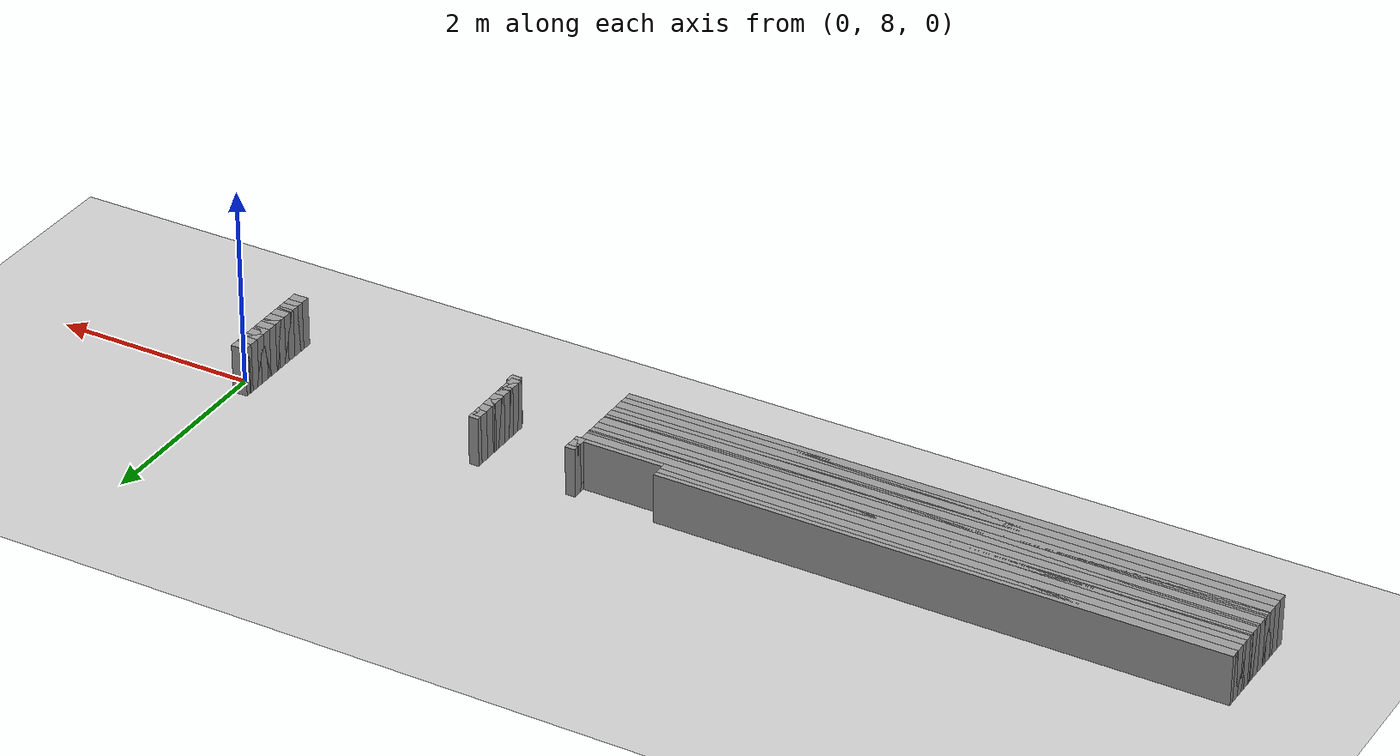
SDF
<sdf version="1.6">
 <world name="GridMap">
  <include><uri>model://sun</uri></include>
  <include><uri>model://ground_plane</uri></include>
  <model name="GridMap">
   <link name="Wall_(135.0,143.0)">
    <collision name="Wall_(135.0,143.0)_Collision">
     <geometry><box><size>6.4 0.1 0.5</size></box></geometry>
     <pose>-6.75 7.15 0.25 0 -0 0</pose>
    </collision>
    <inertial>
     <mass>0.5</mass>
     <pose>0 0.01 0 0 0 0</pose>
     <inertia><ixx>0.004</ixx><ixy>0.001</ixy><ixz>0</ixz><iyy>0.006</iyy><iyz>0</iyz><izz>0.007</izz></inertia>
    </inertial>
    <visual name="Wall_(135.0,143.0)_Visual">
     <geometry><box><size>6.4 0.1 0.5</size></box></geometry>
     <pose>-6.75 7.15 0.25 0 -0 0</pose>
     <material>
      <script><uri>file://media/materials/scripts/gazebo.material</uri><name>Gazebo/Grey</name></script>
      <ambient>1 1 1 1</ambient>
     </material>
     <meta><layer>0</layer></meta>
    </visual>
   </link>
   <link name="Wall_(1.5,144.0)">
    <collision name="Wall_(1.5,144.0)_Collision">
     <geometry><box><size>0.15000000000000002 0.1 0.5</size></box></geometry>
     <pose>-0.07500000000000001 7.2 0.25 0 -0 0</pose>
    </collision>
    <inertial>
     <mass>0.5</mass>
     <pose>0 0.01 0 0 0 0</pose>
     <inertia><ixx>0.004</ixx><ixy>0.001</ixy><ixz>0</ixz><iyy>0.006</iyy><iyz>0</iyz><izz>0.007</izz></inertia>
    </inertial>
    <visual name="Wall_(1.5,144.0)_Visual">
     <geometry><box><size>0.15000000000000002 0.1 0.5</size></box></geometry>
     <pose>-0.07500000000000001 7.2 0.25 0 -0 0</pose>
     <material>
      <script><uri>file://media/materials/scripts/gazebo.material</uri><name>Gazebo/Grey</name></script>
      <ambient>1 1 1 1</ambient>
     </material>
     <meta><layer>0</layer></meta>
    </visual>
   </link>
   <link name="Wall_(135.0,144.0)">
    <collision name="Wall_(135.0,144.0)_Collision">
     <geometry><box><size>6.4 0.1 0.5</size></box></geometry>
     <pose>-6.75 7.2 0.25 0 -0 0</pose>
    </collision>
    <inertial>
     <mass>0.5</mass>
     <pose>0 0.01 0 0 0 0</pose>
     <inertia><ixx>0.004</ixx><ixy>0.001</ixy><ixz>0</ixz><iyy>0.006</iyy><iyz>0</iyz><izz>0.007</izz></inertia>
    </inertial>
    <visual name="Wall_(135.0,144.0)_Visual">
     <geometry><box><size>6.4 0.1 0.5</size></box></geometry>
     <pose>-6.75 7.2 0.25 0 -0 0</pose>
     <material>
      <script><uri>file://media/materials/scripts/gazebo.material</uri><name>Gazebo/Grey</name></script>
      <ambient>1 1 1 1</ambient>
     </material>
     <meta><layer>0</layer></meta>
    </visual>
   </link>
   <link name="Wall_(1.5,145.0)">
    <collision name="Wall_(1.5,145.0)_Collision">
     <geometry><box><size>0.15000000000000002 0.1 0.5</size></box></geometry>
     <pose>-0.07500000000000001 7.25 0.25 0 -0 0</pose>
    </collision>
    <inertial>
     <mass>0.5</mass>
     <pose>0 0.01 0 0 0 0</pose>
     <inertia><ixx>0.004</ixx><ixy>0.001</ixy><ixz>0</ixz><iyy>0.006</iyy><iyz>0</iyz><izz>0.007</izz></inertia>
    </inertial>
    <visual name="Wall_(1.5,145.0)_Visual">
     <geometry><box><size>0.15000000000000002 0.1 0.5</size></box></geometry>
     <pose>-0.07500000000000001 7.25 0.25 0 -0 0</pose>
     <material>
      <script><uri>file://media/materials/scripts/gazebo.material</uri><name>Gazebo/Grey</name></script>
      <ambient>1 1 1 1</ambient>
     </material>
     <meta><layer>0</layer></meta>
    </visual>
   </link>
   <link name="Wall_(135.0,145.0)">
    <collision name="Wall_(135.0,145.0)_Collision">
     <geometry><box><size>6.4 0.1 0.5</size></box></geometry>
     <pose>-6.75 7.25 0.25 0 -0 0</pose>
    </collision>
    <inertial>
     <mass>0.5</mass>
     <pose>0 0.01 0 0 0 0</pose>
     <inertia><ixx>0.004</ixx><ixy>0.001</ixy><ixz>0</ixz><iyy>0.006</iyy><iyz>0</iyz><izz>0.007</izz></inertia>
    </inertial>
    <visual name="Wall_(135.0,145.0)_Visual">
     <geometry><box><size>6.4 0.1 0.5</size></box></geometry>
     <pose>-6.75 7.25 0.25 0 -0 0</pose>
     <material>
      <script><uri>file://media/materials/scripts/gazebo.material</uri><name>Gazebo/Grey</name></script>
      <ambient>1 1 1 1</ambient>
     </material>
     <meta><layer>0</layer></meta>
    </visual>
   </link>
   <link name="Wall_(1.5,146.0)">
    <collision name="Wall_(1.5,146.0)_Collision">
     <geometry><box><size>0.15000000000000002 0.1 0.5</size></box></geometry>
     <pose>-0.07500000000000001 7.300000000000001 0.25 0 -0 0</pose>
    </collision>
    <inertial>
     <mass>0.5</mass>
     <pose>0 0.01 0 0 0 0</pose>
     <inertia><ixx>0.004</ixx><ixy>0.001</ixy><ixz>0</ixz><iyy>0.006</iyy><iyz>0</iyz><izz>0.007</izz></inertia>
    </inertial>
    <visual name="Wall_(1.5,146.0)_Visual">
     <geometry><box><size>0.15000000000000002 0.1 0.5</size></box></geometry>
     <pose>-0.07500000000000001 7.300000000000001 0.25 0 -0 0</pose>
     <material>
      <script><uri>file://media/materials/scripts/gazebo.material</uri><name>Gazebo/Grey</name></script>
      <ambient>1 1 1 1</ambient>
     </material>
     <meta><layer>0</layer></meta>
    </visual>
   </link>
   <link name="Wall_(135.0,146.0)">
    <collision name="Wall_(135.0,146.0)_Collision">
     <geometry><box><size>6.4 0.1 0.5</size></box></geometry>
     <pose>-6.75 7.300000000000001 0.25 0 -0 0</pose>
    </collision>
    <inertial>
     <mass>0.5</mass>
     <pose>0 0.01 0 0 0 0</pose>
     <inertia><ixx>0.004</ixx><ixy>0.001</ixy><ixz>0</ixz><iyy>0.006</iyy><iyz>0</iyz><izz>0.007</izz></inertia>
    </inertial>
    <visual name="Wall_(135.0,146.0)_Visual">
     <geometry><box><size>6.4 0.1 0.5</size></box></geometry>
     <pose>-6.75 7.300000000000001 0.25 0 -0 0</pose>
     <material>
      <script><uri>file://media/materials/scripts/gazebo.material</uri><name>Gazebo/Grey</name></script>
      <ambient>1 1 1 1</ambient>
     </material>
     <meta><layer>0</layer></meta>
    </visual>
   </link>
   <link name="Wall_(1.5,147.0)">
    <collision name="Wall_(1.5,147.0)_Collision">
     <geometry><box><size>0.15000000000000002 0.1 0.5</size></box></geometry>
     <pose>-0.07500000000000001 7.3500000000000005 0.25 0 -0 0</pose>
    </collision>
    <inertial>
     <mass>0.5</mass>
     <pose>0 0.01 0 0 0 0</pose>
     <inertia><ixx>0.004</ixx><ixy>0.001</ixy><ixz>0</ixz><iyy>0.006</iyy><iyz>0</iyz><izz>0.007</izz></inertia>
    </inertial>
    <visual name="Wall_(1.5,147.0)_Visual">
     <geometry><box><size>0.15000000000000002 0.1 0.5</size></box></geometry>
     <pose>-0.07500000000000001 7.3500000000000005 0.25 0 -0 0</pose>
     <material>
      <script><uri>file://media/materials/scripts/gazebo.material</uri><name>Gazebo/Grey</name></script>
      <ambient>1 1 1 1</ambient>
     </material>
     <meta><layer>0</layer></meta>
    </visual>
   </link>
   <link name="Wall_(135.0,147.0)">
    <collision name="Wall_(135.0,147.0)_Collision">
     <geometry><box><size>6.4 0.1 0.5</size></box></geometry>
     <pose>-6.75 7.3500000000000005 0.25 0 -0 0</pose>
    </collision>
    <inertial>
     <mass>0.5</mass>
     <pose>0 0.01 0 0 0 0</pose>
     <inertia><ixx>0.004</ixx><ixy>0.001</ixy><ixz>0</ixz><iyy>0.006</iyy><iyz>0</iyz><izz>0.007</izz></inertia>
    </inertial>
    <visual name="Wall_(135.0,147.0)_Visual">
     <geometry><box><size>6.4 0.1 0.5</size></box></geometry>
     <pose>-6.75 7.3500000000000005 0.25 0 -0 0</pose>
     <material>
      <script><uri>file://media/materials/scripts/gazebo.material</uri><name>Gazebo/Grey</name></script>
      <ambient>1 1 1 1</ambient>
     </material>
     <meta><layer>0</layer></meta>
    </visual>
   </link>
   <link name="Wall_(1.5,148.0)">
    <collision name="Wall_(1.5,148.0)_Collision">
     <geometry><box><size>0.15000000000000002 0.1 0.5</size></box></geometry>
     <pose>-0.07500000000000001 7.4 0.25 0 -0 0</pose>
    </collision>
    <inertial>
     <mass>0.5</mass>
     <pose>0 0.01 0 0 0 0</pose>
     <inertia><ixx>0.004</ixx><ixy>0.001</ixy><ixz>0</ixz><iyy>0.006</iyy><iyz>0</iyz><izz>0.007</izz></inertia>
    </inertial>
    <visual name="Wall_(1.5,148.0)_Visual">
     <geometry><box><size>0.15000000000000002 0.1 0.5</size></box></geometry>
     <pose>-0.07500000000000001 7.4 0.25 0 -0 0</pose>
     <material>
      <script><uri>file://media/materials/scripts/gazebo.material</uri><name>Gazebo/Grey</name></script>
      <ambient>1 1 1 1</ambient>
     </material>
     <meta><layer>0</layer></meta>
    </visual>
   </link>
   <link name="Wall_(50.5,148.0)">
    <collision name="Wall_(50.5,148.0)_Collision">
     <geometry><box><size>0.1 0.1 0.5</size></box></geometry>
     <pose>-2.5250000000000004 7.4 0.25 0 -0 0</pose>
    </collision>
    <inertial>
     <mass>0.5</mass>
     <pose>0 0.01 0 0 0 0</pose>
     <inertia><ixx>0.004</ixx><ixy>0.001</ixy><ixz>0</ixz><iyy>0.006</iyy><iyz>0</iyz><izz>0.007</izz></inertia>
    </inertial>
    <visual name="Wall_(50.5,148.0)_Visual">
     <geometry><box><size>0.1 0.1 0.5</size></box></geometry>
     <pose>-2.5250000000000004 7.4 0.25 0 -0 0</pose>
     <material>
      <script><uri>file://media/materials/scripts/gazebo.material</uri><name>Gazebo/Grey</name></script>
      <ambient>1 1 1 1</ambient>
     </material>
     <meta><layer>0</layer></meta>
    </visual>
   </link>
   <link name="Wall_(135.0,148.0)">
    <collision name="Wall_(135.0,148.0)_Collision">
     <geometry><box><size>6.4 0.1 0.5</size></box></geometry>
     <pose>-6.75 7.4 0.25 0 -0 0</pose>
    </collision>
    <inertial>
     <mass>0.5</mass>
     <pose>0 0.01 0 0 0 0</pose>
     <inertia><ixx>0.004</ixx><ixy>0.001</ixy><ixz>0</ixz><iyy>0.006</iyy><iyz>0</iyz><izz>0.007</izz></inertia>
    </inertial>
    <visual name="Wall_(135.0,148.0)_Visual">
     <geometry><box><size>6.4 0.1 0.5</size></box></geometry>
     <pose>-6.75 7.4 0.25 0 -0 0</pose>
     <material>
      <script><uri>file://media/materials/scripts/gazebo.material</uri><name>Gazebo/Grey</name></script>
      <ambient>1 1 1 1</ambient>
     </material>
     <meta><layer>0</layer></meta>
    </visual>
   </link>
   <link name="Wall_(1.5,149.0)">
    <collision name="Wall_(1.5,149.0)_Collision">
     <geometry><box><size>0.15000000000000002 0.1 0.5</size></box></geometry>
     <pose>-0.07500000000000001 7.45 0.25 0 -0 0</pose>
    </collision>
    <inertial>
     <mass>0.5</mass>
     <pose>0 0.01 0 0 0 0</pose>
     <inertia><ixx>0.004</ixx><ixy>0.001</ixy><ixz>0</ixz><iyy>0.006</iyy><iyz>0</iyz><izz>0.007</izz></inertia>
    </inertial>
    <visual name="Wall_(1.5,149.0)_Visual">
     <geometry><box><size>0.15000000000000002 0.1 0.5</size></box></geometry>
     <pose>-0.07500000000000001 7.45 0.25 0 -0 0</pose>
     <material>
      <script><uri>file://media/materials/scripts/gazebo.material</uri><name>Gazebo/Grey</name></script>
      <ambient>1 1 1 1</ambient>
     </material>
     <meta><layer>0</layer></meta>
    </visual>
   </link>
   <link name="Wall_(51.0,149.0)">
    <collision name="Wall_(51.0,149.0)_Collision">
     <geometry><box><size>0.1 0.1 0.5</size></box></geometry>
     <pose>-2.5500000000000003 7.45 0.25 0 -0 0</pose>
    </collision>
    <inertial>
     <mass>0.5</mass>
     <pose>0 0.01 0 0 0 0</pose>
     <inertia><ixx>0.004</ixx><ixy>0.001</ixy><ixz>0</ixz><iyy>0.006</iyy><iyz>0</iyz><izz>0.007</izz></inertia>
    </inertial>
    <visual name="Wall_(51.0,149.0)_Visual">
     <geometry><box><size>0.1 0.1 0.5</size></box></geometry>
     <pose>-2.5500000000000003 7.45 0.25 0 -0 0</pose>
     <material>
      <script><uri>file://media/materials/scripts/gazebo.material</uri><name>Gazebo/Grey</name></script>
      <ambient>1 1 1 1</ambient>
     </material>
     <meta><layer>0</layer></meta>
    </visual>
   </link>
   <link name="Wall_(135.0,149.0)">
    <collision name="Wall_(135.0,149.0)_Collision">
     <geometry><box><size>6.4 0.1 0.5</size></box></geometry>
     <pose>-6.75 7.45 0.25 0 -0 0</pose>
    </collision>
    <inertial>
     <mass>0.5</mass>
     <pose>0 0.01 0 0 0 0</pose>
     <inertia><ixx>0.004</ixx><ixy>0.001</ixy><ixz>0</ixz><iyy>0.006</iyy><iyz>0</iyz><izz>0.007</izz></inertia>
    </inertial>
    <visual name="Wall_(135.0,149.0)_Visual">
     <geometry><box><size>6.4 0.1 0.5</size></box></geometry>
     <pose>-6.75 7.45 0.25 0 -0 0</pose>
     <material>
      <script><uri>file://media/materials/scripts/gazebo.material</uri><name>Gazebo/Grey</name></script>
      <ambient>1 1 1 1</ambient>
     </material>
     <meta><layer>0</layer></meta>
    </visual>
   </link>
   <link name="Wall_(1.5,150.0)">
    <collision name="Wall_(1.5,150.0)_Collision">
     <geometry><box><size>0.15000000000000002 0.1 0.5</size></box></geometry>
     <pose>-0.07500000000000001 7.5 0.25 0 -0 0</pose>
    </collision>
    <inertial>
     <mass>0.5</mass>
     <pose>0 0.01 0 0 0 0</pose>
     <inertia><ixx>0.004</ixx><ixy>0.001</ixy><ixz>0</ixz><iyy>0.006</iyy><iyz>0</iyz><izz>0.007</izz></inertia>
    </inertial>
    <visual name="Wall_(1.5,150.0)_Visual">
     <geometry><box><size>0.15000000000000002 0.1 0.5</size></box></geometry>
     <pose>-0.07500000000000001 7.5 0.25 0 -0 0</pose>
     <material>
      <script><uri>file://media/materials/scripts/gazebo.material</uri><name>Gazebo/Grey</name></script>
      <ambient>1 1 1 1</ambient>
     </material>
     <meta><layer>0</layer></meta>
    </visual>
   </link>
   <link name="Wall_(51.0,150.0)">
    <collision name="Wall_(51.0,150.0)_Collision">
     <geometry><box><size>0.1 0.1 0.5</size></box></geometry>
     <pose>-2.5500000000000003 7.5 0.25 0 -0 0</pose>
    </collision>
    <inertial>
     <mass>0.5</mass>
     <pose>0 0.01 0 0 0 0</pose>
     <inertia><ixx>0.004</ixx><ixy>0.001</ixy><ixz>0</ixz><iyy>0.006</iyy><iyz>0</iyz><izz>0.007</izz></inertia>
    </inertial>
    <visual name="Wall_(51.0,150.0)_Visual">
     <geometry><box><size>0.1 0.1 0.5</size></box></geometry>
     <pose>-2.5500000000000003 7.5 0.25 0 -0 0</pose>
     <material>
      <script><uri>file://media/materials/scripts/gazebo.material</uri><name>Gazebo/Grey</name></script>
      <ambient>1 1 1 1</ambient>
     </material>
     <meta><layer>0</layer></meta>
    </visual>
   </link>
   <link name="Wall_(135.0,150.0)">
    <collision name="Wall_(135.0,150.0)_Collision">
     <geometry><box><size>6.4 0.1 0.5</size></box></geometry>
     <pose>-6.75 7.5 0.25 0 -0 0</pose>
    </collision>
    <inertial>
     <mass>0.5</mass>
     <pose>0 0.01 0 0 0 0</pose>
     <inertia><ixx>0.004</ixx><ixy>0.001</ixy><ixz>0</ixz><iyy>0.006</iyy><iyz>0</iyz><izz>0.007</izz></inertia>
    </inertial>
    <visual name="Wall_(135.0,150.0)_Visual">
     <geometry><box><size>6.4 0.1 0.5</size></box></geometry>
     <pose>-6.75 7.5 0.25 0 -0 0</pose>
     <material>
      <script><uri>file://media/materials/scripts/gazebo.material</uri><name>Gazebo/Grey</name></script>
      <ambient>1 1 1 1</ambient>
     </material>
     <meta><layer>0</layer></meta>
    </visual>
   </link>
   <link name="Wall_(1.5,151.0)">
    <collision name="Wall_(1.5,151.0)_Collision">
     <geometry><box><size>0.15000000000000002 0.1 0.5</size></box></geometry>
     <pose>-0.07500000000000001 7.550000000000001 0.25 0 -0 0</pose>
    </collision>
    <inertial>
     <mass>0.5</mass>
     <pose>0 0.01 0 0 0 0</pose>
     <inertia><ixx>0.004</ixx><ixy>0.001</ixy><ixz>0</ixz><iyy>0.006</iyy><iyz>0</iyz><izz>0.007</izz></inertia>
    </inertial>
    <visual name="Wall_(1.5,151.0)_Visual">
     <geometry><box><size>0.15000000000000002 0.1 0.5</size></box></geometry>
     <pose>-0.07500000000000001 7.550000000000001 0.25 0 -0 0</pose>
     <material>
      <script><uri>file://media/materials/scripts/gazebo.material</uri><name>Gazebo/Grey</name></script>
      <ambient>1 1 1 1</ambient>
     </material>
     <meta><layer>0</layer></meta>
    </visual>
   </link>
   <link name="Wall_(51.0,151.0)">
    <collision name="Wall_(51.0,151.0)_Collision">
     <geometry><box><size>0.1 0.1 0.5</size></box></geometry>
     <pose>-2.5500000000000003 7.550000000000001 0.25 0 -0 0</pose>
    </collision>
    <inertial>
     <mass>0.5</mass>
     <pose>0 0.01 0 0 0 0</pose>
     <inertia><ixx>0.004</ixx><ixy>0.001</ixy><ixz>0</ixz><iyy>0.006</iyy><iyz>0</iyz><izz>0.007</izz></inertia>
    </inertial>
    <visual name="Wall_(51.0,151.0)_Visual">
     <geometry><box><size>0.1 0.1 0.5</size></box></geometry>
     <pose>-2.5500000000000003 7.550000000000001 0.25 0 -0 0</pose>
     <material>
      <script><uri>file://media/materials/scripts/gazebo.material</uri><name>Gazebo/Grey</name></script>
      <ambient>1 1 1 1</ambient>
     </material>
     <meta><layer>0</layer></meta>
    </visual>
   </link>
   <link name="Wall_(135.0,151.0)">
    <collision name="Wall_(135.0,151.0)_Collision">
     <geometry><box><size>6.4 0.1 0.5</size></box></geometry>
     <pose>-6.75 7.550000000000001 0.25 0 -0 0</pose>
    </collision>
    <inertial>
     <mass>0.5</mass>
     <pose>0 0.01 0 0 0 0</pose>
     <inertia><ixx>0.004</ixx><ixy>0.001</ixy><ixz>0</ixz><iyy>0.006</iyy><iyz>0</iyz><izz>0.007</izz></inertia>
    </inertial>
    <visual name="Wall_(135.0,151.0)_Visual">
     <geometry><box><size>6.4 0.1 0.5</size></box></geometry>
     <pose>-6.75 7.550000000000001 0.25 0 -0 0</pose>
     <material>
      <script><uri>file://media/materials/scripts/gazebo.material</uri><name>Gazebo/Grey</name></script>
      <ambient>1 1 1 1</ambient>
     </material>
     <meta><layer>0</layer></meta>
    </visual>
   </link>
   <link name="Wall_(1.5,152.0)">
    <collision name="Wall_(1.5,152.0)_Collision">
     <geometry><box><size>0.15000000000000002 0.1 0.5</size></box></geometry>
     <pose>-0.07500000000000001 7.6000000000000005 0.25 0 -0 0</pose>
    </collision>
    <inertial>
     <mass>0.5</mass>
     <pose>0 0.01 0 0 0 0</pose>
     <inertia><ixx>0.004</ixx><ixy>0.001</ixy><ixz>0</ixz><iyy>0.006</iyy><iyz>0</iyz><izz>0.007</izz></inertia>
    </inertial>
    <visual name="Wall_(1.5,152.0)_Visual">
     <geometry><box><size>0.15000000000000002 0.1 0.5</size></box></geometry>
     <pose>-0.07500000000000001 7.6000000000000005 0.25 0 -0 0</pose>
     <material>
      <script><uri>file://media/materials/scripts/gazebo.material</uri><name>Gazebo/Grey</name></script>
      <ambient>1 1 1 1</ambient>
     </material>
     <meta><layer>0</layer></meta>
    </visual>
   </link>
   <link name="Wall_(51.0,152.0)">
    <collision name="Wall_(51.0,152.0)_Collision">
     <geometry><box><size>0.1 0.1 0.5</size></box></geometry>
     <pose>-2.5500000000000003 7.6000000000000005 0.25 0 -0 0</pose>
    </collision>
    <inertial>
     <mass>0.5</mass>
     <pose>0 0.01 0 0 0 0</pose>
     <inertia><ixx>0.004</ixx><ixy>0.001</ixy><ixz>0</ixz><iyy>0.006</iyy><iyz>0</iyz><izz>0.007</izz></inertia>
    </inertial>
    <visual name="Wall_(51.0,152.0)_Visual">
     <geometry><box><size>0.1 0.1 0.5</size></box></geometry>
     <pose>-2.5500000000000003 7.6000000000000005 0.25 0 -0 0</pose>
     <material>
      <script><uri>file://media/materials/scripts/gazebo.material</uri><name>Gazebo/Grey</name></script>
      <ambient>1 1 1 1</ambient>
     </material>
     <meta><layer>0</layer></meta>
    </visual>
   </link>
   <link name="Wall_(135.0,152.0)">
    <collision name="Wall_(135.0,152.0)_Collision">
     <geometry><box><size>6.4 0.1 0.5</size></box></geometry>
     <pose>-6.75 7.6000000000000005 0.25 0 -0 0</pose>
    </collision>
    <inertial>
     <mass>0.5</mass>
     <pose>0 0.01 0 0 0 0</pose>
     <inertia><ixx>0.004</ixx><ixy>0.001</ixy><ixz>0</ixz><iyy>0.006</iyy><iyz>0</iyz><izz>0.007</izz></inertia>
    </inertial>
    <visual name="Wall_(135.0,152.0)_Visual">
     <geometry><box><size>6.4 0.1 0.5</size></box></geometry>
     <pose>-6.75 7.6000000000000005 0.25 0 -0 0</pose>
     <material>
      <script><uri>file://media/materials/scripts/gazebo.material</uri><name>Gazebo/Grey</name></script>
      <ambient>1 1 1 1</ambient>
     </material>
     <meta><layer>0</layer></meta>
    </visual>
   </link>
   <link name="Wall_(1.5,153.0)">
    <collision name="Wall_(1.5,153.0)_Collision">
     <geometry><box><size>0.15000000000000002 0.1 0.5</size></box></geometry>
     <pose>-0.07500000000000001 7.65 0.25 0 -0 0</pose>
    </collision>
    <inertial>
     <mass>0.5</mass>
     <pose>0 0.01 0 0 0 0</pose>
     <inertia><ixx>0.004</ixx><ixy>0.001</ixy><ixz>0</ixz><iyy>0.006</iyy><iyz>0</iyz><izz>0.007</izz></inertia>
    </inertial>
    <visual name="Wall_(1.5,153.0)_Visual">
     <geometry><box><size>0.15000000000000002 0.1 0.5</size></box></geometry>
     <pose>-0.07500000000000001 7.65 0.25 0 -0 0</pose>
     <material>
      <script><uri>file://media/materials/scripts/gazebo.material</uri><name>Gazebo/Grey</name></script>
      <ambient>1 1 1 1</ambient>
     </material>
     <meta><layer>0</layer></meta>
    </visual>
   </link>
   <link name="Wall_(51.0,153.0)">
    <collision name="Wall_(51.0,153.0)_Collision">
     <geometry><box><size>0.1 0.1 0.5</size></box></geometry>
     <pose>-2.5500000000000003 7.65 0.25 0 -0 0</pose>
    </collision>
    <inertial>
     <mass>0.5</mass>
     <pose>0 0.01 0 0 0 0</pose>
     <inertia><ixx>0.004</ixx><ixy>0.001</ixy><ixz>0</ixz><iyy>0.006</iyy><iyz>0</iyz><izz>0.007</izz></inertia>
    </inertial>
    <visual name="Wall_(51.0,153.0)_Visual">
     <geometry><box><size>0.1 0.1 0.5</size></box></geometry>
     <pose>-2.5500000000000003 7.65 0.25 0 -0 0</pose>
     <material>
      <script><uri>file://media/materials/scripts/gazebo.material</uri><name>Gazebo/Grey</name></script>
      <ambient>1 1 1 1</ambient>
     </material>
     <meta><layer>0</layer></meta>
    </visual>
   </link>
   <link name="Wall_(135.0,153.0)">
    <collision name="Wall_(135.0,153.0)_Collision">
     <geometry><box><size>6.4 0.1 0.5</size></box></geometry>
     <pose>-6.75 7.65 0.25 0 -0 0</pose>
    </collision>
    <inertial>
     <mass>0.5</mass>
     <pose>0 0.01 0 0 0 0</pose>
     <inertia><ixx>0.004</ixx><ixy>0.001</ixy><ixz>0</ixz><iyy>0.006</iyy><iyz>0</iyz><izz>0.007</izz></inertia>
    </inertial>
    <visual name="Wall_(135.0,153.0)_Visual">
     <geometry><box><size>6.4 0.1 0.5</size></box></geometry>
     <pose>-6.75 7.65 0.25 0 -0 0</pose>
     <material>
      <script><uri>file://media/materials/scripts/gazebo.material</uri><name>Gazebo/Grey</name></script>
      <ambient>1 1 1 1</ambient>
     </material>
     <meta><layer>0</layer></meta>
    </visual>
   </link>
   <link name="Wall_(1.5,154.0)">
    <collision name="Wall_(1.5,154.0)_Collision">
     <geometry><box><size>0.15000000000000002 0.1 0.5</size></box></geometry>
     <pose>-0.07500000000000001 7.7 0.25 0 -0 0</pose>
    </collision>
    <inertial>
     <mass>0.5</mass>
     <pose>0 0.01 0 0 0 0</pose>
     <inertia><ixx>0.004</ixx><ixy>0.001</ixy><ixz>0</ixz><iyy>0.006</iyy><iyz>0</iyz><izz>0.007</izz></inertia>
    </inertial>
    <visual name="Wall_(1.5,154.0)_Visual">
     <geometry><box><size>0.15000000000000002 0.1 0.5</size></box></geometry>
     <pose>-0.07500000000000001 7.7 0.25 0 -0 0</pose>
     <material>
      <script><uri>file://media/materials/scripts/gazebo.material</uri><name>Gazebo/Grey</name></script>
      <ambient>1 1 1 1</ambient>
     </material>
     <meta><layer>0</layer></meta>
    </visual>
   </link>
   <link name="Wall_(51.0,154.0)">
    <collision name="Wall_(51.0,154.0)_Collision">
     <geometry><box><size>0.1 0.1 0.5</size></box></geometry>
     <pose>-2.5500000000000003 7.7 0.25 0 -0 0</pose>
    </collision>
    <inertial>
     <mass>0.5</mass>
     <pose>0 0.01 0 0 0 0</pose>
     <inertia><ixx>0.004</ixx><ixy>0.001</ixy><ixz>0</ixz><iyy>0.006</iyy><iyz>0</iyz><izz>0.007</izz></inertia>
    </inertial>
    <visual name="Wall_(51.0,154.0)_Visual">
     <geometry><box><size>0.1 0.1 0.5</size></box></geometry>
     <pose>-2.5500000000000003 7.7 0.25 0 -0 0</pose>
     <material>
      <script><uri>file://media/materials/scripts/gazebo.material</uri><name>Gazebo/Grey</name></script>
      <ambient>1 1 1 1</ambient>
     </material>
     <meta><layer>0</layer></meta>
    </visual>
   </link>
   <link name="Wall_(135.0,154.0)">
    <collision name="Wall_(135.0,154.0)_Collision">
     <geometry><box><size>6.4 0.1 0.5</size></box></geometry>
     <pose>-6.75 7.7 0.25 0 -0 0</pose>
    </collision>
    <inertial>
     <mass>0.5</mass>
     <pose>0 0.01 0 0 0 0</pose>
     <inertia><ixx>0.004</ixx><ixy>0.001</ixy><ixz>0</ixz><iyy>0.006</iyy><iyz>0</iyz><izz>0.007</izz></inertia>
    </inertial>
    <visual name="Wall_(135.0,154.0)_Visual">
     <geometry><box><size>6.4 0.1 0.5</size></box></geometry>
     <pose>-6.75 7.7 0.25 0 -0 0</pose>
     <material>
      <script><uri>file://media/materials/scripts/gazebo.material</uri><name>Gazebo/Grey</name></script>
      <ambient>1 1 1 1</ambient>
     </material>
     <meta><layer>0</layer></meta>
    </visual>
   </link>
   <link name="Wall_(1.5,155.0)">
    <collision name="Wall_(1.5,155.0)_Collision">
     <geometry><box><size>0.15000000000000002 0.1 0.5</size></box></geometry>
     <pose>-0.07500000000000001 7.75 0.25 0 -0 0</pose>
    </collision>
    <inertial>
     <mass>0.5</mass>
     <pose>0 0.01 0 0 0 0</pose>
     <inertia><ixx>0.004</ixx><ixy>0.001</ixy><ixz>0</ixz><iyy>0.006</iyy><iyz>0</iyz><izz>0.007</izz></inertia>
    </inertial>
    <visual name="Wall_(1.5,155.0)_Visual">
     <geometry><box><size>0.15000000000000002 0.1 0.5</size></box></geometry>
     <pose>-0.07500000000000001 7.75 0.25 0 -0 0</pose>
     <material>
      <script><uri>file://media/materials/scripts/gazebo.material</uri><name>Gazebo/Grey</name></script>
      <ambient>1 1 1 1</ambient>
     </material>
     <meta><layer>0</layer></meta>
    </visual>
   </link>
   <link name="Wall_(51.0,155.0)">
    <collision name="Wall_(51.0,155.0)_Collision">
     <geometry><box><size>0.1 0.1 0.5</size></box></geometry>
     <pose>-2.5500000000000003 7.75 0.25 0 -0 0</pose>
    </collision>
    <inertial>
     <mass>0.5</mass>
     <pose>0 0.01 0 0 0 0</pose>
     <inertia><ixx>0.004</ixx><ixy>0.001</ixy><ixz>0</ixz><iyy>0.006</iyy><iyz>0</iyz><izz>0.007</izz></inertia>
    </inertial>
    <visual name="Wall_(51.0,155.0)_Visual">
     <geometry><box><size>0.1 0.1 0.5</size></box></geometry>
     <pose>-2.5500000000000003 7.75 0.25 0 -0 0</pose>
     <material>
      <script><uri>file://media/materials/scripts/gazebo.material</uri><name>Gazebo/Grey</name></script>
      <ambient>1 1 1 1</ambient>
     </material>
     <meta><layer>0</layer></meta>
    </visual>
   </link>
   <link name="Wall_(135.0,155.0)">
    <collision name="Wall_(135.0,155.0)_Collision">
     <geometry><box><size>6.4 0.1 0.5</size></box></geometry>
     <pose>-6.75 7.75 0.25 0 -0 0</pose>
    </collision>
    <inertial>
     <mass>0.5</mass>
     <pose>0 0.01 0 0 0 0</pose>
     <inertia><ixx>0.004</ixx><ixy>0.001</ixy><ixz>0</ixz><iyy>0.006</iyy><iyz>0</iyz><izz>0.007</izz></inertia>
    </inertial>
    <visual name="Wall_(135.0,155.0)_Visual">
     <geometry><box><size>6.4 0.1 0.5</size></box></geometry>
     <pose>-6.75 7.75 0.25 0 -0 0</pose>
     <material>
      <script><uri>file://media/materials/scripts/gazebo.material</uri><name>Gazebo/Grey</name></script>
      <ambient>1 1 1 1</ambient>
     </material>
     <meta><layer>0</layer></meta>
    </visual>
   </link>
   <link name="Wall_(1.5,156.0)">
    <collision name="Wall_(1.5,156.0)_Collision">
     <geometry><box><size>0.15000000000000002 0.1 0.5</size></box></geometry>
     <pose>-0.07500000000000001 7.800000000000001 0.25 0 -0 0</pose>
    </collision>
    <inertial>
     <mass>0.5</mass>
     <pose>0 0.01 0 0 0 0</pose>
     <inertia><ixx>0.004</ixx><ixy>0.001</ixy><ixz>0</ixz><iyy>0.006</iyy><iyz>0</iyz><izz>0.007</izz></inertia>
    </inertial>
    <visual name="Wall_(1.5,156.0)_Visual">
     <geometry><box><size>0.15000000000000002 0.1 0.5</size></box></geometry>
     <pose>-0.07500000000000001 7.800000000000001 0.25 0 -0 0</pose>
     <material>
      <script><uri>file://media/materials/scripts/gazebo.material</uri><name>Gazebo/Grey</name></script>
      <ambient>1 1 1 1</ambient>
     </material>
     <meta><layer>0</layer></meta>
    </visual>
   </link>
   <link name="Wall_(51.0,156.0)">
    <collision name="Wall_(51.0,156.0)_Collision">
     <geometry><box><size>0.1 0.1 0.5</size></box></geometry>
     <pose>-2.5500000000000003 7.800000000000001 0.25 0 -0 0</pose>
    </collision>
    <inertial>
     <mass>0.5</mass>
     <pose>0 0.01 0 0 0 0</pose>
     <inertia><ixx>0.004</ixx><ixy>0.001</ixy><ixz>0</ixz><iyy>0.006</iyy><iyz>0</iyz><izz>0.007</izz></inertia>
    </inertial>
    <visual name="Wall_(51.0,156.0)_Visual">
     <geometry><box><size>0.1 0.1 0.5</size></box></geometry>
     <pose>-2.5500000000000003 7.800000000000001 0.25 0 -0 0</pose>
     <material>
      <script><uri>file://media/materials/scripts/gazebo.material</uri><name>Gazebo/Grey</name></script>
      <ambient>1 1 1 1</ambient>
     </material>
     <meta><layer>0</layer></meta>
    </visual>
   </link>
   <link name="Wall_(135.0,156.0)">
    <collision name="Wall_(135.0,156.0)_Collision">
     <geometry><box><size>6.4 0.1 0.5</size></box></geometry>
     <pose>-6.75 7.800000000000001 0.25 0 -0 0</pose>
    </collision>
    <inertial>
     <mass>0.5</mass>
     <pose>0 0.01 0 0 0 0</pose>
     <inertia><ixx>0.004</ixx><ixy>0.001</ixy><ixz>0</ixz><iyy>0.006</iyy><iyz>0</iyz><izz>0.007</izz></inertia>
    </inertial>
    <visual name="Wall_(135.0,156.0)_Visual">
     <geometry><box><size>6.4 0.1 0.5</size></box></geometry>
     <pose>-6.75 7.800000000000001 0.25 0 -0 0</pose>
     <material>
      <script><uri>file://media/materials/scripts/gazebo.material</uri><name>Gazebo/Grey</name></script>
      <ambient>1 1 1 1</ambient>
     </material>
     <meta><layer>0</layer></meta>
    </visual>
   </link>
   <link name="Wall_(1.5,157.0)">
    <collision name="Wall_(1.5,157.0)_Collision">
     <geometry><box><size>0.15000000000000002 0.1 0.5</size></box></geometry>
     <pose>-0.07500000000000001 7.8500000000000005 0.25 0 -0 0</pose>
    </collision>
    <inertial>
     <mass>0.5</mass>
     <pose>0 0.01 0 0 0 0</pose>
     <inertia><ixx>0.004</ixx><ixy>0.001</ixy><ixz>0</ixz><iyy>0.006</iyy><iyz>0</iyz><izz>0.007</izz></inertia>
    </inertial>
    <visual name="Wall_(1.5,157.0)_Visual">
     <geometry><box><size>0.15000000000000002 0.1 0.5</size></box></geometry>
     <pose>-0.07500000000000001 7.8500000000000005 0.25 0 -0 0</pose>
     <material>
      <script><uri>file://media/materials/scripts/gazebo.material</uri><name>Gazebo/Grey</name></script>
      <ambient>1 1 1 1</ambient>
     </material>
     <meta><layer>0</layer></meta>
    </visual>
   </link>
   <link name="Wall_(51.0,157.0)">
    <collision name="Wall_(51.0,157.0)_Collision">
     <geometry><box><size>0.1 0.1 0.5</size></box></geometry>
     <pose>-2.5500000000000003 7.8500000000000005 0.25 0 -0 0</pose>
    </collision>
    <inertial>
     <mass>0.5</mass>
     <pose>0 0.01 0 0 0 0</pose>
     <inertia><ixx>0.004</ixx><ixy>0.001</ixy><ixz>0</ixz><iyy>0.006</iyy><iyz>0</iyz><izz>0.007</izz></inertia>
    </inertial>
    <visual name="Wall_(51.0,157.0)_Visual">
     <geometry><box><size>0.1 0.1 0.5</size></box></geometry>
     <pose>-2.5500000000000003 7.8500000000000005 0.25 0 -0 0</pose>
     <material>
      <script><uri>file://media/materials/scripts/gazebo.material</uri><name>Gazebo/Grey</name></script>
      <ambient>1 1 1 1</ambient>
     </material>
     <meta><layer>0</layer></meta>
    </visual>
   </link>
   <link name="Wall_(135.0,157.0)">
    <collision name="Wall_(135.0,157.0)_Collision">
     <geometry><box><size>6.4 0.1 0.5</size></box></geometry>
     <pose>-6.75 7.8500000000000005 0.25 0 -0 0</pose>
    </collision>
    <inertial>
     <mass>0.5</mass>
     <pose>0 0.01 0 0 0 0</pose>
     <inertia><ixx>0.004</ixx><ixy>0.001</ixy><ixz>0</ixz><iyy>0.006</iyy><iyz>0</iyz><izz>0.007</izz></inertia>
    </inertial>
    <visual name="Wall_(135.0,157.0)_Visual">
     <geometry><box><size>6.4 0.1 0.5</size></box></geometry>
     <pose>-6.75 7.8500000000000005 0.25 0 -0 0</pose>
     <material>
      <script><uri>file://media/materials/scripts/gazebo.material</uri><name>Gazebo/Grey</name></script>
      <ambient>1 1 1 1</ambient>
     </material>
     <meta><layer>0</layer></meta>
    </visual>
   </link>
   <link name="Wall_(1.5,158.0)">
    <collision name="Wall_(1.5,158.0)_Collision">
     <geometry><box><size>0.15000000000000002 0.1 0.5</size></box></geometry>
     <pose>-0.07500000000000001 7.9 0.25 0 -0 0</pose>
    </collision>
    <inertial>
     <mass>0.5</mass>
     <pose>0 0.01 0 0 0 0</pose>
     <inertia><ixx>0.004</ixx><ixy>0.001</ixy><ixz>0</ixz><iyy>0.006</iyy><iyz>0</iyz><izz>0.007</izz></inertia>
    </inertial>
    <visual name="Wall_(1.5,158.0)_Visual">
     <geometry><box><size>0.15000000000000002 0.1 0.5</size></box></geometry>
     <pose>-0.07500000000000001 7.9 0.25 0 -0 0</pose>
     <material>
      <script><uri>file://media/materials/scripts/gazebo.material</uri><name>Gazebo/Grey</name></script>
      <ambient>1 1 1 1</ambient>
     </material>
     <meta><layer>0</layer></meta>
    </visual>
   </link>
   <link name="Wall_(51.0,158.0)">
    <collision name="Wall_(51.0,158.0)_Collision">
     <geometry><box><size>0.1 0.1 0.5</size></box></geometry>
     <pose>-2.5500000000000003 7.9 0.25 0 -0 0</pose>
    </collision>
    <inertial>
     <mass>0.5</mass>
     <pose>0 0.01 0 0 0 0</pose>
     <inertia><ixx>0.004</ixx><ixy>0.001</ixy><ixz>0</ixz><iyy>0.006</iyy><iyz>0</iyz><izz>0.007</izz></inertia>
    </inertial>
    <visual name="Wall_(51.0,158.0)_Visual">
     <geometry><box><size>0.1 0.1 0.5</size></box></geometry>
     <pose>-2.5500000000000003 7.9 0.25 0 -0 0</pose>
     <material>
      <script><uri>file://media/materials/scripts/gazebo.material</uri><name>Gazebo/Grey</name></script>
      <ambient>1 1 1 1</ambient>
     </material>
     <meta><layer>0</layer></meta>
    </visual>
   </link>
   <link name="Wall_(135.0,158.0)">
    <collision name="Wall_(135.0,158.0)_Collision">
     <geometry><box><size>6.4 0.1 0.5</size></box></geometry>
     <pose>-6.75 7.9 0.25 0 -0 0</pose>
    </collision>
    <inertial>
     <mass>0.5</mass>
     <pose>0 0.01 0 0 0 0</pose>
     <inertia><ixx>0.004</ixx><ixy>0.001</ixy><ixz>0</ixz><iyy>0.006</iyy><iyz>0</iyz><izz>0.007</izz></inertia>
    </inertial>
    <visual name="Wall_(135.0,158.0)_Visual">
     <geometry><box><size>6.4 0.1 0.5</size></box></geometry>
     <pose>-6.75 7.9 0.25 0 -0 0</pose>
     <material>
      <script><uri>file://media/materials/scripts/gazebo.material</uri><name>Gazebo/Grey</name></script>
      <ambient>1 1 1 1</ambient>
     </material>
     <meta><layer>0</layer></meta>
    </visual>
   </link>
   <link name="Wall_(1.5,159.0)">
    <collision name="Wall_(1.5,159.0)_Collision">
     <geometry><box><size>0.15000000000000002 0.1 0.5</size></box></geometry>
     <pose>-0.07500000000000001 7.95 0.25 0 -0 0</pose>
    </collision>
    <inertial>
     <mass>0.5</mass>
     <pose>0 0.01 0 0 0 0</pose>
     <inertia><ixx>0.004</ixx><ixy>0.001</ixy><ixz>0</ixz><iyy>0.006</iyy><iyz>0</iyz><izz>0.007</izz></inertia>
    </inertial>
    <visual name="Wall_(1.5,159.0)_Visual">
     <geometry><box><size>0.15000000000000002 0.1 0.5</size></box></geometry>
     <pose>-0.07500000000000001 7.95 0.25 0 -0 0</pose>
     <material>
      <script><uri>file://media/materials/scripts/gazebo.material</uri><name>Gazebo/Grey</name></script>
      <ambient>1 1 1 1</ambient>
     </material>
     <meta><layer>0</layer></meta>
    </visual>
   </link>
   <link name="Wall_(51.0,159.0)">
    <collision name="Wall_(51.0,159.0)_Collision">
     <geometry><box><size>0.1 0.1 0.5</size></box></geometry>
     <pose>-2.5500000000000003 7.95 0.25 0 -0 0</pose>
    </collision>
    <inertial>
     <mass>0.5</mass>
     <pose>0 0.01 0 0 0 0</pose>
     <inertia><ixx>0.004</ixx><ixy>0.001</ixy><ixz>0</ixz><iyy>0.006</iyy><iyz>0</iyz><izz>0.007</izz></inertia>
    </inertial>
    <visual name="Wall_(51.0,159.0)_Visual">
     <geometry><box><size>0.1 0.1 0.5</size></box></geometry>
     <pose>-2.5500000000000003 7.95 0.25 0 -0 0</pose>
     <material>
      <script><uri>file://media/materials/scripts/gazebo.material</uri><name>Gazebo/Grey</name></script>
      <ambient>1 1 1 1</ambient>
     </material>
     <meta><layer>0</layer></meta>
    </visual>
   </link>
   <link name="Wall_(135.0,159.0)">
    <collision name="Wall_(135.0,159.0)_Collision">
     <geometry><box><size>6.4 0.1 0.5</size></box></geometry>
     <pose>-6.75 7.95 0.25 0 -0 0</pose>
    </collision>
    <inertial>
     <mass>0.5</mass>
     <pose>0 0.01 0 0 0 0</pose>
     <inertia><ixx>0.004</ixx><ixy>0.001</ixy><ixz>0</ixz><iyy>0.006</iyy><iyz>0</iyz><izz>0.007</izz></inertia>
    </inertial>
    <visual name="Wall_(135.0,159.0)_Visual">
     <geometry><box><size>6.4 0.1 0.5</size></box></geometry>
     <pose>-6.75 7.95 0.25 0 -0 0</pose>
     <material>
      <script><uri>file://media/materials/scripts/gazebo.material</uri><name>Gazebo/Grey</name></script>
      <ambient>1 1 1 1</ambient>
     </material>
     <meta><layer>0</layer></meta>
    </visual>
   </link>
   <link name="Wall_(1.5,160.0)">
    <collision name="Wall_(1.5,160.0)_Collision">
     <geometry><box><size>0.15000000000000002 0.1 0.5</size></box></geometry>
     <pose>-0.07500000000000001 8.0 0.25 0 -0 0</pose>
    </collision>
    <inertial>
     <mass>0.5</mass>
     <pose>0 0.01 0 0 0 0</pose>
     <inertia><ixx>0.004</ixx><ixy>0.001</ixy><ixz>0</ixz><iyy>0.006</iyy><iyz>0</iyz><izz>0.007</izz></inertia>
    </inertial>
    <visual name="Wall_(1.5,160.0)_Visual">
     <geometry><box><size>0.15000000000000002 0.1 0.5</size></box></geometry>
     <pose>-0.07500000000000001 8.0 0.25 0 -0 0</pose>
     <material>
      <script><uri>file://media/materials/scripts/gazebo.material</uri><name>Gazebo/Grey</name></script>
      <ambient>1 1 1 1</ambient>
     </material>
     <meta><layer>0</layer></meta>
    </visual>
   </link>
   <link name="Wall_(51.0,160.0)">
    <collision name="Wall_(51.0,160.0)_Collision">
     <geometry><box><size>0.1 0.1 0.5</size></box></geometry>
     <pose>-2.5500000000000003 8.0 0.25 0 -0 0</pose>
    </collision>
    <inertial>
     <mass>0.5</mass>
     <pose>0 0.01 0 0 0 0</pose>
     <inertia><ixx>0.004</ixx><ixy>0.001</ixy><ixz>0</ixz><iyy>0.006</iyy><iyz>0</iyz><izz>0.007</izz></inertia>
    </inertial>
    <visual name="Wall_(51.0,160.0)_Visual">
     <geometry><box><size>0.1 0.1 0.5</size></box></geometry>
     <pose>-2.5500000000000003 8.0 0.25 0 -0 0</pose>
     <material>
      <script><uri>file://media/materials/scripts/gazebo.material</uri><name>Gazebo/Grey</name></script>
      <ambient>1 1 1 1</ambient>
     </material>
     <meta><layer>0</layer></meta>
    </visual>
   </link>
   <link name="Wall_(71.0,160.0)">
    <collision name="Wall_(71.0,160.0)_Collision">
     <geometry><box><size>0.1 0.1 0.5</size></box></geometry>
     <pose>-3.5500000000000003 8.0 0.25 0 -0 0</pose>
    </collision>
    <inertial>
     <mass>0.5</mass>
     <pose>0 0.01 0 0 0 0</pose>
     <inertia><ixx>0.004</ixx><ixy>0.001</ixy><ixz>0</ixz><iyy>0.006</iyy><iyz>0</iyz><izz>0.007</izz></inertia>
    </inertial>
    <visual name="Wall_(71.0,160.0)_Visual">
     <geometry><box><size>0.1 0.1 0.5</size></box></geometry>
     <pose>-3.5500000000000003 8.0 0.25 0 -0 0</pose>
     <material>
      <script><uri>file://media/materials/scripts/gazebo.material</uri><name>Gazebo/Grey</name></script>
      <ambient>1 1 1 1</ambient>
     </material>
     <meta><layer>0</layer></meta>
    </visual>
   </link>
   <link name="Wall_(143.5,160.0)">
    <collision name="Wall_(143.5,160.0)_Collision">
     <geometry><box><size>5.550000000000001 0.1 0.5</size></box></geometry>
     <pose>-7.175000000000001 8.0 0.25 0 -0 0</pose>
    </collision>
    <inertial>
     <mass>0.5</mass>
     <pose>0 0.01 0 0 0 0</pose>
     <inertia><ixx>0.004</ixx><ixy>0.001</ixy><ixz>0</ixz><iyy>0.006</iyy><iyz>0</iyz><izz>0.007</izz></inertia>
    </inertial>
    <visual name="Wall_(143.5,160.0)_Visual">
     <geometry><box><size>5.550000000000001 0.1 0.5</size></box></geometry>
     <pose>-7.175000000000001 8.0 0.25 0 -0 0</pose>
     <material>
      <script><uri>file://media/materials/scripts/gazebo.material</uri><name>Gazebo/Grey</name></script>
      <ambient>1 1 1 1</ambient>
     </material>
     <meta><layer>0</layer></meta>
    </visual>
   </link>
   <link name="Wall_(1.5,161.0)">
    <collision name="Wall_(1.5,161.0)_Collision">
     <geometry><box><size>0.15000000000000002 0.1 0.5</size></box></geometry>
     <pose>-0.07500000000000001 8.05 0.25 0 -0 0</pose>
    </collision>
    <inertial>
     <mass>0.5</mass>
     <pose>0 0.01 0 0 0 0</pose>
     <inertia><ixx>0.004</ixx><ixy>0.001</ixy><ixz>0</ixz><iyy>0.006</iyy><iyz>0</iyz><izz>0.007</izz></inertia>
    </inertial>
    <visual name="Wall_(1.5,161.0)_Visual">
     <geometry><box><size>0.15000000000000002 0.1 0.5</size></box></geometry>
     <pose>-0.07500000000000001 8.05 0.25 0 -0 0</pose>
     <material>
      <script><uri>file://media/materials/scripts/gazebo.material</uri><name>Gazebo/Grey</name></script>
      <ambient>1 1 1 1</ambient>
     </material>
     <meta><layer>0</layer></meta>
    </visual>
   </link>
   <link name="Wall_(51.0,161.0)">
    <collision name="Wall_(51.0,161.0)_Collision">
     <geometry><box><size>0.1 0.1 0.5</size></box></geometry>
     <pose>-2.5500000000000003 8.05 0.25 0 -0 0</pose>
    </collision>
    <inertial>
     <mass>0.5</mass>
     <pose>0 0.01 0 0 0 0</pose>
     <inertia><ixx>0.004</ixx><ixy>0.001</ixy><ixz>0</ixz><iyy>0.006</iyy><iyz>0</iyz><izz>0.007</izz></inertia>
    </inertial>
    <visual name="Wall_(51.0,161.0)_Visual">
     <geometry><box><size>0.1 0.1 0.5</size></box></geometry>
     <pose>-2.5500000000000003 8.05 0.25 0 -0 0</pose>
     <material>
      <script><uri>file://media/materials/scripts/gazebo.material</uri><name>Gazebo/Grey</name></script>
      <ambient>1 1 1 1</ambient>
     </material>
     <meta><layer>0</layer></meta>
    </visual>
   </link>
   <link name="Wall_(71.0,161.0)">
    <collision name="Wall_(71.0,161.0)_Collision">
     <geometry><box><size>0.1 0.1 0.5</size></box></geometry>
     <pose>-3.5500000000000003 8.05 0.25 0 -0 0</pose>
    </collision>
    <inertial>
     <mass>0.5</mass>
     <pose>0 0.01 0 0 0 0</pose>
     <inertia><ixx>0.004</ixx><ixy>0.001</ixy><ixz>0</ixz><iyy>0.006</iyy><iyz>0</iyz><izz>0.007</izz></inertia>
    </inertial>
    <visual name="Wall_(71.0,161.0)_Visual">
     <geometry><box><size>0.1 0.1 0.5</size></box></geometry>
     <pose>-3.5500000000000003 8.05 0.25 0 -0 0</pose>
     <material>
      <script><uri>file://media/materials/scripts/gazebo.material</uri><name>Gazebo/Grey</name></script>
      <ambient>1 1 1 1</ambient>
     </material>
     <meta><layer>0</layer></meta>
    </visual>
   </link>
   <link name="Wall_(143.5,161.0)">
    <collision name="Wall_(143.5,161.0)_Collision">
     <geometry><box><size>5.550000000000001 0.1 0.5</size></box></geometry>
     <pose>-7.175000000000001 8.05 0.25 0 -0 0</pose>
    </collision>
    <inertial>
     <mass>0.5</mass>
     <pose>0 0.01 0 0 0 0</pose>
     <inertia><ixx>0.004</ixx><ixy>0.001</ixy><ixz>0</ixz><iyy>0.006</iyy><iyz>0</iyz><izz>0.007</izz></inertia>
    </inertial>
    <visual name="Wall_(143.5,161.0)_Visual">
     <geometry><box><size>5.550000000000001 0.1 0.5</size></box></geometry>
     <pose>-7.175000000000001 8.05 0.25 0 -0 0</pose>
     <material>
      <script><uri>file://media/materials/scripts/gazebo.material</uri><name>Gazebo/Grey</name></script>
      <ambient>1 1 1 1</ambient>
     </material>
     <meta><layer>0</layer></meta>
    </visual>
   </link>
   <link name="Wall_(1.5,162.0)">
    <collision name="Wall_(1.5,162.0)_Collision">
     <geometry><box><size>0.15000000000000002 0.1 0.5</size></box></geometry>
     <pose>-0.07500000000000001 8.1 0.25 0 -0 0</pose>
    </collision>
    <inertial>
     <mass>0.5</mass>
     <pose>0 0.01 0 0 0 0</pose>
     <inertia><ixx>0.004</ixx><ixy>0.001</ixy><ixz>0</ixz><iyy>0.006</iyy><iyz>0</iyz><izz>0.007</izz></inertia>
    </inertial>
    <visual name="Wall_(1.5,162.0)_Visual">
     <geometry><box><size>0.15000000000000002 0.1 0.5</size></box></geometry>
     <pose>-0.07500000000000001 8.1 0.25 0 -0 0</pose>
     <material>
      <script><uri>file://media/materials/scripts/gazebo.material</uri><name>Gazebo/Grey</name></script>
      <ambient>1 1 1 1</ambient>
     </material>
     <meta><layer>0</layer></meta>
    </visual>
   </link>
   <link name="Wall_(51.0,162.0)">
    <collision name="Wall_(51.0,162.0)_Collision">
     <geometry><box><size>0.1 0.1 0.5</size></box></geometry>
     <pose>-2.5500000000000003 8.1 0.25 0 -0 0</pose>
    </collision>
    <inertial>
     <mass>0.5</mass>
     <pose>0 0.01 0 0 0 0</pose>
     <inertia><ixx>0.004</ixx><ixy>0.001</ixy><ixz>0</ixz><iyy>0.006</iyy><iyz>0</iyz><izz>0.007</izz></inertia>
    </inertial>
    <visual name="Wall_(51.0,162.0)_Visual">
     <geometry><box><size>0.1 0.1 0.5</size></box></geometry>
     <pose>-2.5500000000000003 8.1 0.25 0 -0 0</pose>
     <material>
      <script><uri>file://media/materials/scripts/gazebo.material</uri><name>Gazebo/Grey</name></script>
      <ambient>1 1 1 1</ambient>
     </material>
     <meta><layer>0</layer></meta>
    </visual>
   </link>
   <link name="Wall_(71.0,162.0)">
    <collision name="Wall_(71.0,162.0)_Collision">
     <geometry><box><size>0.1 0.1 0.5</size></box></geometry>
     <pose>-3.5500000000000003 8.1 0.25 0 -0 0</pose>
    </collision>
    <inertial>
     <mass>0.5</mass>
     <pose>0 0.01 0 0 0 0</pose>
     <inertia><ixx>0.004</ixx><ixy>0.001</ixy><ixz>0</ixz><iyy>0.006</iyy><iyz>0</iyz><izz>0.007</izz></inertia>
    </inertial>
    <visual name="Wall_(71.0,162.0)_Visual">
     <geometry><box><size>0.1 0.1 0.5</size></box></geometry>
     <pose>-3.5500000000000003 8.1 0.25 0 -0 0</pose>
     <material>
      <script><uri>file://media/materials/scripts/gazebo.material</uri><name>Gazebo/Grey</name></script>
      <ambient>1 1 1 1</ambient>
     </material>
     <meta><layer>0</layer></meta>
    </visual>
   </link>
   <link name="Wall_(143.5,162.0)">
    <collision name="Wall_(143.5,162.0)_Collision">
     <geometry><box><size>5.550000000000001 0.1 0.5</size></box></geometry>
     <pose>-7.175000000000001 8.1 0.25 0 -0 0</pose>
    </collision>
    <inertial>
     <mass>0.5</mass>
     <pose>0 0.01 0 0 0 0</pose>
     <inertia><ixx>0.004</ixx><ixy>0.001</ixy><ixz>0</ixz><iyy>0.006</iyy><iyz>0</iyz><izz>0.007</izz></inertia>
    </inertial>
    <visual name="Wall_(143.5,162.0)_Visual">
     <geometry><box><size>5.550000000000001 0.1 0.5</size></box></geometry>
     <pose>-7.175000000000001 8.1 0.25 0 -0 0</pose>
     <material>
      <script><uri>file://media/materials/scripts/gazebo.material</uri><name>Gazebo/Grey</name></script>
      <ambient>1 1 1 1</ambient>
     </material>
     <meta><layer>0</layer></meta>
    </visual>
   </link>
   <link name="Wall_(1.5,163.0)">
    <collision name="Wall_(1.5,163.0)_Collision">
     <geometry><box><size>0.15000000000000002 0.1 0.5</size></box></geometry>
     <pose>-0.07500000000000001 8.15 0.25 0 -0 0</pose>
    </collision>
    <inertial>
     <mass>0.5</mass>
     <pose>0 0.01 0 0 0 0</pose>
     <inertia><ixx>0.004</ixx><ixy>0.001</ixy><ixz>0</ixz><iyy>0.006</iyy><iyz>0</iyz><izz>0.007</izz></inertia>
    </inertial>
    <visual name="Wall_(1.5,163.0)_Visual">
     <geometry><box><size>0.15000000000000002 0.1 0.5</size></box></geometry>
     <pose>-0.07500000000000001 8.15 0.25 0 -0 0</pose>
     <material>
      <script><uri>file://media/materials/scripts/gazebo.material</uri><name>Gazebo/Grey</name></script>
      <ambient>1 1 1 1</ambient>
     </material>
     <meta><layer>0</layer></meta>
    </visual>
   </link>
   <static>1</static>
  </model>
 </world>
</sdf>
